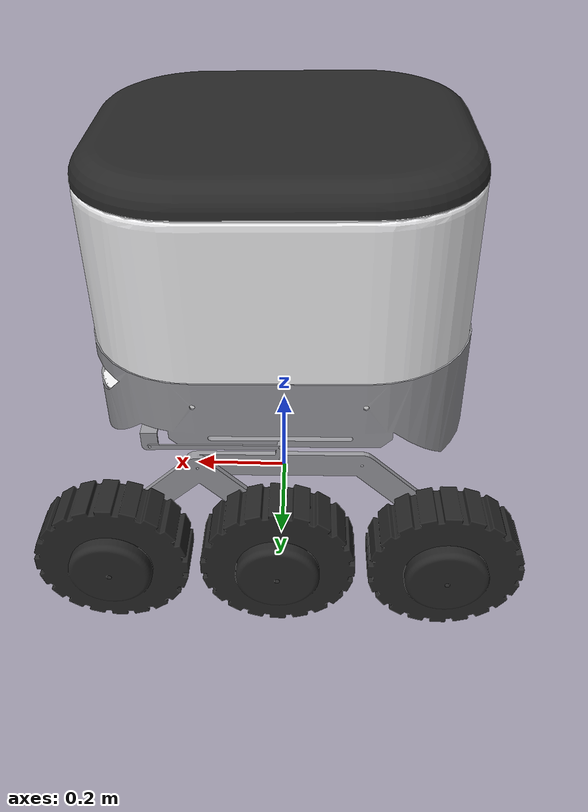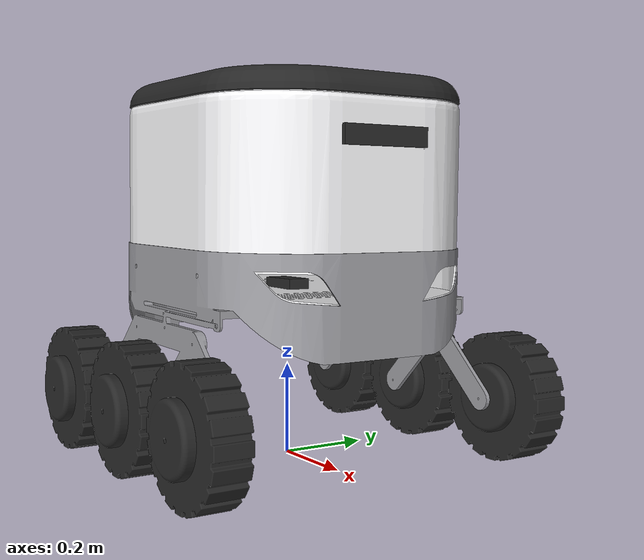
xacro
<?xml version="1.0"?>
<robot name="deliverbot" xmlns:xacro="http://www.ros.org/wiki/xacro" xmlns:gz="http://gazebosim.org/schema" >

    <xacro:include filename="common_properties.urdf.xacro" />
    <xacro:include filename="chassis.urdf.xacro"/>
    <xacro:include filename="wheels.urdf.xacro" />
    <xacro:include filename="sensors.urdf.xacro"/>
    <xacro:include filename="ros2_control.urdf.xacro" />
    <xacro:include filename="gz_sim.urdf.xacro" />

</robot>

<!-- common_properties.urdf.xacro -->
<robot xmlns:xacro="http://www.ros.org/wiki/xacro">

    <material name="pearl_white">
        <color rgba="0.961 0.961 0.969 1" />
    </material>

    <material name="stain_black">
        <color rgba="0.150 0.150 0.150 1" />
    </material>

    <material name="anodize_silver">
        <color rgba="0.600 0.600 0.620 1" />
    </material>

    <xacro:macro name="box_inertia" params="m l h w xyz rpy">
        <inertial>
            <origin xyz="${xyz}" rpy="${rpy}"/>
            <mass value="${m}"/>
            <inertia ixx="${(m/12) * (w*w + h*h)}" ixy="0.0" ixz="0.0"
                     iyy="${(m/12) * (l*l + w*w)}" iyz="0.0"
                     izz="${(m/12) * (l*l + h*h)}"/>
        </inertial>
    </xacro:macro>

    <xacro:macro name="cylinder_inertia" params="m l r xyz rpy">
        <inertial>
            <origin xyz="${xyz}" rpy="${rpy}"/>
            <mass value="${m}"/>
            <inertia ixx="${(m/12) * (3*r*r + l*l)}" ixy="0.0" ixz="0.0"
                     iyy="${(m/12) * (3*r*r + l*l)}" iyz="0.0"
                     izz="${(m/2)  * (r*r)}"/>
        </inertial>
    </xacro:macro>

    <xacro:macro name="sphere_inertial" params="m r xyz rpy">
        <inertial>
            <origin xyz="${xyz}" rpy="${rpy}"/>
            <mass value="${m}"/>
            <inertia ixx="${(2.0/5.0) * (m*r*r)}" ixy="0.0" ixz="0.0"
                     iyy="${(2.0/5.0) * (m*r*r)}" iyz="0.0"
                     izz="${(2.0/5.0) * (m*r*r)}"/>
        </inertial>

    </xacro:macro>

</robot>

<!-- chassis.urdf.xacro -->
<robot xmlns:xacro="http://www.ros.org/wiki/xacro">

    <link name="base_footprint"/>

    <link name="base_link">
        <visual>
            <origin xyz="0 0 0" rpy="0 0 0" />
            <geometry>
                <mesh filename="package://deliverbot_description/meshes/base_link.STL" />
            </geometry>
            <material name="anodize_silver"/>
        </visual>
        <collision>
            <origin xyz="0 0 -0.14" rpy="0 0 0" />
            <geometry>
                <box size="0.75 0.65 0.25" />
            </geometry>
        </collision>
        <xacro:box_inertia m="6.3848" l="0.75" h="0.65" w="0.30" xyz="0 0 -0.14" rpy="0 0 0"/>
    </link>

    <link name="base_chassis_link">
        <visual>
            <origin xyz="0 0 0" rpy="0 0 0" />
            <geometry>
                <mesh filename="package://deliverbot_description/meshes/base_chassis_link.STL" />
            </geometry>
            <material name="pearl_white"/>
        </visual>
        <collision>
            <origin xyz="0 0 0.2" rpy="0 0 0" />
            <geometry>
                <box size="0.7 0.6 0.4" />
            </geometry>
        </collision>
        <xacro:box_inertia m="6.1826" l="0.7" h="0.6" w="0.4" xyz="0 0 0.2" rpy="0 0 0"/>
    </link>

    <link name="chassis_top_link">
        <visual>
            <origin xyz="0.35 0 -0.456" rpy="0 0 0" />
            <geometry>
                <mesh filename="package://deliverbot_description/meshes/chassis_hatch_link.STL" />
            </geometry>
            <material name="stain_black"/>
        </visual>
        <collision>
            <origin xyz="0.35 0 -0.025" rpy="0 0 0" />
            <geometry>
                <box size="0.7 0.6 0.05" />
            </geometry>
        </collision>
        <xacro:box_inertia m="4.3077" l="0.7" h="0.6" w="0.05" xyz="0.35 0 -0.025" rpy="0 0 0"/>
    </link>

    <joint name="base_base_joint" type="fixed">
        <parent link="base_footprint" />
        <child link="base_link" />
        <origin xyz="0 0 0.371545" rpy="0 0 0" />
    </joint>

    <joint name="base_body_joint" type="fixed">
        <parent link="base_link" />
        <child link="base_chassis_link" />
        <origin xyz="0 0 0" rpy="0 0 0" />
    </joint>

    <joint name="body_hatch_joint" type="revolute">
        <parent link="base_chassis_link" />
        <child link="chassis_top_link" />
        <origin xyz="-0.35 0 0.456" rpy="0 0 0" />
        <axis xyz="0 1 0" />
        <limit lower="-1.2" upper="0.05" velocity="0.5" effort="1000.0"/>
        <dynamics damping="5.0" friction="1.0"/>
    </joint>

</robot>

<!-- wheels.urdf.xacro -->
<robot xmlns:xacro="http://www.ros.org/wiki/xacro">

    <link name="front_right_wheel">
        <visual>
            <origin xyz="0 0 0" rpy="0 0 ${pi}" />
            <geometry>
                <mesh filename="package://deliverbot_description/meshes/wheel.STL" />
            </geometry>
            <material name="stain_black"/>
        </visual>
        <collision>
            <origin xyz="0 0.065 0" rpy="0 0 0" />
            <geometry>
                <sphere radius="0.139095" />
            </geometry>
        </collision>
        <xacro:sphere_inertial m="2.1688" r="0.139095" xyz="0 0.065 0" rpy="0 0 0" />
    </link>

    <link name="middle_right_wheel">
        <visual>
            <origin xyz="0 0 0" rpy="0 0 ${pi}" />
            <geometry>
                <mesh filename="package://deliverbot_description/meshes/wheel.STL" />
            </geometry>
            <material name="stain_black"/>
        </visual>
        <collision>
            <origin xyz="0 0.065 0" rpy="0 0 0" />
            <geometry>
                <sphere radius="0.139095" />
            </geometry>
        </collision>
        <xacro:sphere_inertial m="2.1688" r="0.139095" xyz="0 0.065 0" rpy="0 0 0" />
    </link>

    <link name="rear_right_wheel">
        <visual>
            <origin xyz="0 0 0" rpy="0 0 ${pi}" />
            <geometry>
                <mesh filename="package://deliverbot_description/meshes/wheel.STL" />
            </geometry>
            <material name="stain_black"/>
        </visual>
        <collision>
            <origin xyz="0 0.065 0" rpy="0 0 0" />
            <geometry>
                <sphere radius="0.139095" />
            </geometry>
        </collision>
        <xacro:sphere_inertial m="2.1688" r="0.139095" xyz="0 0.065 0" rpy="0 0 0" />
    </link>

    <link name="front_left_wheel">
        <visual>
            <origin xyz="0 0 0" rpy="0 0 0" />
            <geometry>
                <mesh filename="package://deliverbot_description/meshes/wheel.STL" />
            </geometry>
            <material name="stain_black"/>
        </visual>
        <collision>
            <origin xyz="0 -0.065 0" rpy="0 0 0" />
            <geometry>
                <sphere radius="0.139095" />
            </geometry>
        </collision>
        <xacro:sphere_inertial m="2.1688" r="0.139095" xyz="0 -0.065 0" rpy="0 0 0" />
    </link>

    <link name="middle_left_wheel">
        <visual>
            <origin xyz="0 0 0" rpy="0 0 0" />
            <geometry>
                <mesh filename="package://deliverbot_description/meshes/wheel.STL" />
            </geometry>
            <material name="stain_black"/>
        </visual>
        <collision>
            <origin xyz="0 -0.065 0" rpy="0 0 0" />
            <geometry>
                <sphere radius="0.139095" />
            </geometry>
        </collision>
        <xacro:sphere_inertial m="2.1688" r="0.139095" xyz="0 -0.065 0" rpy="0 0 0" />
    </link>

    <link name="rear_left_wheel">
        <visual>
            <origin xyz="0 0 0" rpy="0 0 0" />
            <geometry>
                <mesh filename="package://deliverbot_description/meshes/wheel.STL" />
            </geometry>
            <material name="stain_black"/>
        </visual>
        <collision>
            <origin xyz="0 -0.065 0" rpy="0 0 0" />
            <geometry>
                <sphere radius="0.139095" />
            </geometry>
        </collision>
        <xacro:sphere_inertial m="2.1688" r="0.139095" xyz="0 -0.065 0" rpy="0 0 0" />
    </link>

    <joint name="base_front_right_wheel_joint" type="continuous">
        <parent link="base_link" />
        <child link="front_right_wheel" />
        <origin xyz="0.30057 0.31324 -0.23245" rpy="0 0 0" />
        <axis xyz="0 1 0" />
    </joint>

    <joint name="base_middle_right_wheel_joint" type="continuous">
        <parent link="base_link" />
        <child link="middle_right_wheel" />
        <origin xyz="0.00060009 0.31324 -0.23245" rpy="0 0 0" />
        <axis xyz="0 1 0" />
    </joint>

    <joint name="base_rear_right_wheel_joint" type="continuous">
        <parent link="base_link" />
        <child link="rear_right_wheel" />
        <origin xyz="-0.30057 0.31324 -0.23245" rpy="0 0 0" />
        <axis xyz="0 1 0" />
    </joint>

    <joint name="base_front_left_wheel_joint" type="continuous">
        <parent link="base_link" />
        <child link="front_left_wheel" />
        <origin xyz="0.30057 -0.31324 -0.23245" rpy="0 0 0" />
        <axis xyz="0 1 0" />
    </joint>

    <joint name="base_middle_left_wheel_joint" type="continuous">
        <parent link="base_link" />
        <child link="middle_left_wheel" />
        <origin xyz="0.00060009 -0.31324 -0.23245" rpy="0 0 0" />
        <axis xyz="0 1 0" />
    </joint>

    <joint name="base_rear_left_wheel_joint" type="continuous">
        <parent link="base_link" />
        <child link="rear_left_wheel" />
        <origin xyz="-0.30057 -0.31324 -0.23245" rpy="0 0 0" />
        <axis xyz="0 1 0" />
    </joint>

</robot>

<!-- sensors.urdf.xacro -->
<robot xmlns:xacro="http://www.ros.org/wiki/xacro">

    <link name="lidar_link">
        <visual>
            <origin xyz="0 0 0" rpy="0 0 0" />
            <geometry>
                 <box size="0.01 0.2 0.04" />
            </geometry>
            <material name="stain_black"/>
        </visual>
        <collision>
            <origin xyz="0 0 0" rpy="0 0 0" />
            <geometry>
                <box size="0.01 0.2 0.04" />
            </geometry>
        </collision>
        <xacro:box_inertia m="0.1" l="0.01" w="0.04" h="0.2" xyz="0 0 0" rpy="0 0 0"/>
    </link>

    <link name="imu_link">
        <visual>
            <origin xyz="0 0 0" rpy="0 0 0" />
            <geometry>
                <box size="0.1 0.05 0.03" />
            </geometry>
            <material name="stain_black"/>
        </visual>
        <collision>
            <origin xyz="0 0 0" rpy="0 0 0" />
            <geometry>
                <box size="0.1 0.05 0.03" />
            </geometry>
        </collision>
        <xacro:box_inertia m="0.1" l="0.1" w="0.03" h="0.05" xyz="0 0 0" rpy="0 0 0"/>
    </link>

    <joint name="base_lidar_joint" type="fixed">
        <parent link="base_link" />
        <child link="lidar_link" />
        <origin xyz="0.36 0 0.319845" rpy="0 0 0" />
    </joint>

    <joint name="base_imu_joint" type="fixed">
        <parent link="base_link" />
        <child link="imu_link" />
        <origin xyz="0 0 0.01" rpy="0 0 0" />
    </joint>

</robot>
